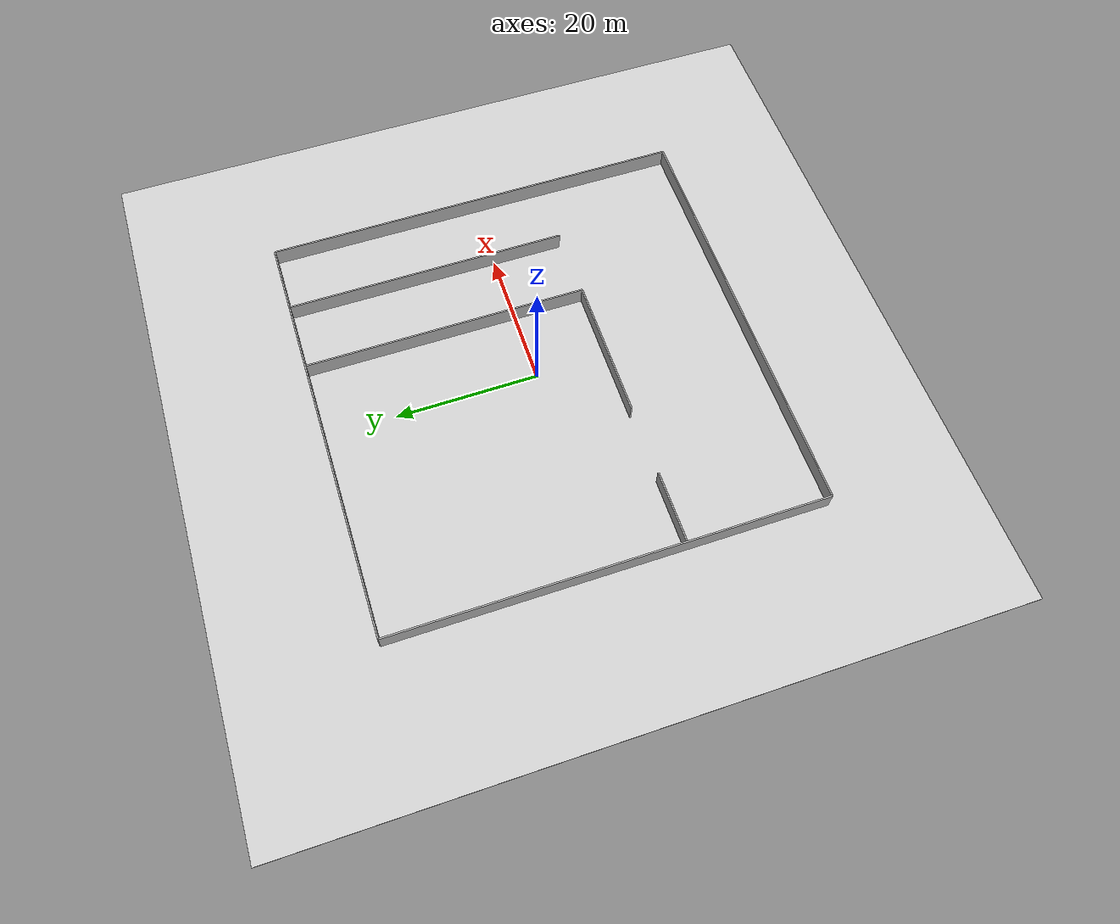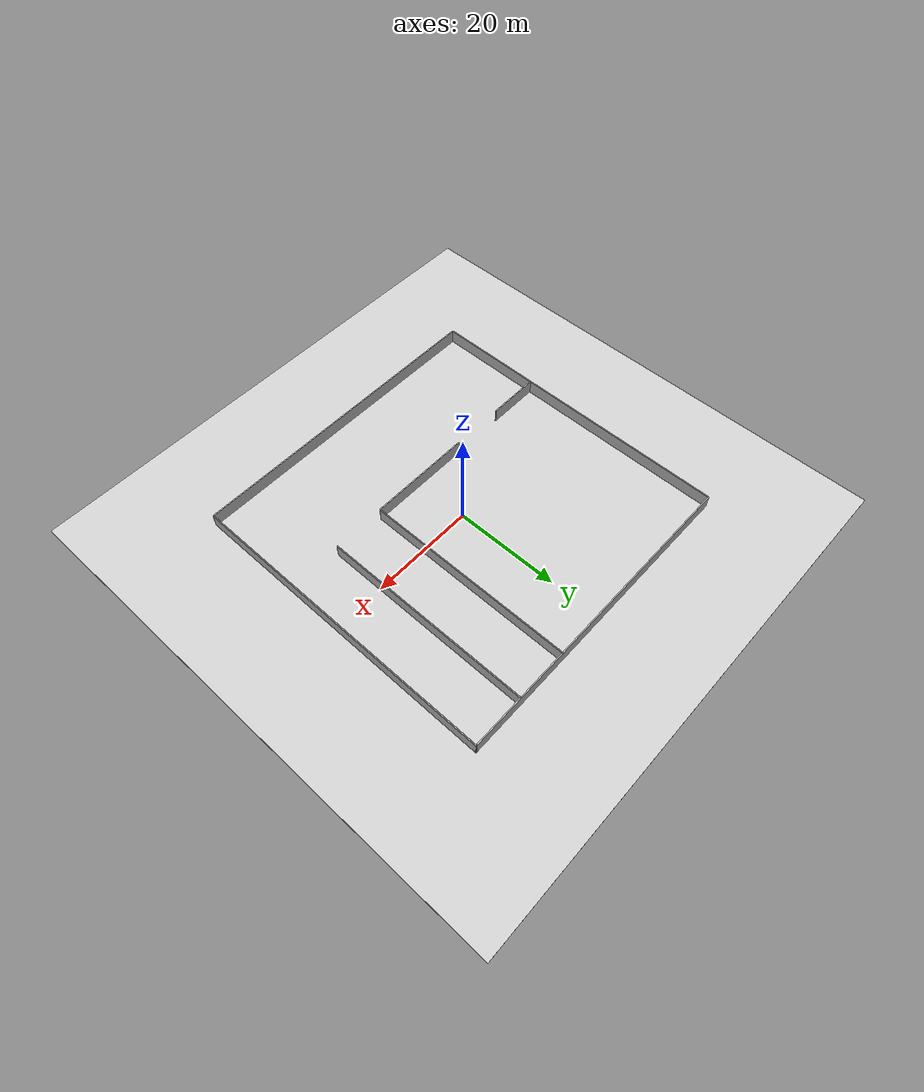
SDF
<?xml version="1.0" ?>
<!--
  You can echo lidar messages using:
    ign topic -e -t /lidar
-->
<sdf version="1.6">
  <world name="nubot_world">
  <physics name="1ms" type="ignored">
      <max_step_size>0.001</max_step_size>
      <real_time_factor>1.0</real_time_factor>
    </physics>
    <plugin
      filename="libignition-gazebo-physics-system.so"
      name="ignition::gazebo::systems::Physics">
    </plugin>
-   <plugin
      filename="libignition-gazebo-sensors-system.so"
      name="ignition::gazebo::systems::Sensors">
      <render_engine>ogre2</render_engine>
    </plugin>
    <plugin
      filename="libignition-gazebo-scene-broadcaster-system.so"
      name="ignition::gazebo::systems::SceneBroadcaster">
    </plugin>
   <plugin
    filename="ignition-gazebo-user-commands-system"
    name="ignition::gazebo::systems::UserCommands">
    </plugin>

    <light type="directional" name="sun">
      <cast_shadows>true</cast_shadows>
      <pose>0 0 10 0 0 0</pose>
      <diffuse>0.8 0.8 0.8 1</diffuse>
      <specular>0.2 0.2 0.2 1</specular>
      <attenuation>
        <range>1000</range>
        <constant>0.9</constant>
        <linear>0.01</linear>
        <quadratic>0.001</quadratic>
      </attenuation>
      <direction>-0.5 0.1 -0.9</direction>
    </light>

    <model name="ground_plane">
      <static>true</static>
      <link name="link">
        <collision name="collision">
          <geometry>
            <box>
              <size>100 100 0.1</size>
            </box>
          </geometry>
        </collision>
        <visual name="visual">
          <geometry>
            <box>
              <size>100 100 0.1</size>
            </box>
          </geometry>
          <material>
            <ambient>0.8 0.8 0.8 1</ambient>
            <diffuse>0.8 0.8 0.8 1</diffuse>
            <specular>0.8 0.8 0.8 1</specular>
          </material>
        </visual>
      </link>
    </model>

    <model name='outsideS'>
      <pose>30 0 1.4 0 0 0</pose>
      <link name='box_link'>
        <collision name='box_collision'>
          <geometry>
            <box>
            <size>0.2 60 2.8</size>
            </box>
          </geometry>
          <surface>
            <friction>
              <ode/>
            </friction>
            <bounce/>
            <contact/>
          </surface>
        </collision>
        <visual name='box_visual'>
          <geometry>
            <box>
            <size>0.2 60 2.8</size>
            </box>
          </geometry>
          <material>
            <ambient>0.3 0.3 0.3 1</ambient>
            <diffuse>0.7 0.7 0.7 1</diffuse>
            <specular>1 1 1 1</specular>
          </material>
        </visual>
        <pose>0 0 0 0 -0 0</pose>
        <enable_wind>false</enable_wind>
      </link>
      <static>true</static>
      <self_collide>false</self_collide>
    </model>

    <model name='insideS'>
      <pose>20 10 1.4 0 0 0</pose>
      <link name='box_link'>
        <collision name='box_collision'>
          <geometry>
            <box>
            <size>0.2 40 2.8</size>
            </box>
          </geometry>
          <surface>
            <friction>
              <ode/>
            </friction>
            <bounce/>
            <contact/>
          </surface>
        </collision>
        <visual name='box_visual'>
          <geometry>
            <box>
            <size>0.2 40 2.8</size>
            </box>
          </geometry>
          <material>
            <ambient>0.3 0.3 0.3 1</ambient>
            <diffuse>0.7 0.7 0.7 1</diffuse>
            <specular>1 1 1 1</specular>
          </material>
        </visual>
        <pose>0 0 0 0 -0 0</pose>
        <enable_wind>false</enable_wind>
      </link>
      <static>true</static>
      <self_collide>false</self_collide>
    </model>

    <model name='insideS1'>
      <pose>10 10 1.4 0 0 0</pose>
      <link name='box_link'>
        <collision name='box_collision'>
          <geometry>
            <box>
            <size>0.2 40 2.8</size>
            </box>
          </geometry>
          <surface>
            <friction>
              <ode/>
            </friction>
            <bounce/>
            <contact/>
          </surface>
        </collision>
        <visual name='box_visual'>
          <geometry>
            <box>
            <size>0.2 40 2.8</size>
            </box>
          </geometry>
          <material>
            <ambient>0.3 0.3 0.3 1</ambient>
            <diffuse>0.7 0.7 0.7 1</diffuse>
            <specular>1 1 1 1</specular>
          </material>
        </visual>
        <pose>0 0 0 0 -0 0</pose>
        <enable_wind>false</enable_wind>
      </link>
      <static>true</static>
      <self_collide>false</self_collide>
    </model>

    <model name='outsideN'>
      <pose>-30 0 1.4 0 0 0</pose>
      <link name='box_link'>
        <collision name='box_collision'>
          <geometry>
            <box>
            <size>0.2 60 2.8</size>
            </box>
          </geometry>
          <surface>
            <friction>
              <ode/>
            </friction>
            <bounce/>
            <contact/>
          </surface>
        </collision>
        <visual name='box_visual'>
          <geometry>
            <box>
            <size>0.2 60 2.8</size>
            </box>
          </geometry>
          <material>
            <ambient>0.3 0.3 0.3 1</ambient>
            <diffuse>0.7 0.7 0.7 1</diffuse>
            <specular>1 1 1 1</specular>
          </material>
        </visual>
        <pose>0 0 0 0 -0 0</pose>
        <enable_wind>false</enable_wind>
      </link>
      <static>true</static>
      <self_collide>false</self_collide>
    </model>

    <model name='outsideE'>
      <pose>0 -30 1.4 0 0 0</pose>
      <link name='box_link'>
        <collision name='box_collision'>
          <geometry>
            <box>
            <size>60 0.2 2.8</size>
            </box>
          </geometry>
          <surface>
            <friction>
              <ode/>
            </friction>
            <bounce/>
            <contact/>
          </surface>
        </collision>
        <visual name='box_visual'>
          <geometry>
            <box>
            <size>60 0.2 2.8</size>
            </box>
          </geometry>
          <material>
            <ambient>0.3 0.3 0.3 1</ambient>
            <diffuse>0.7 0.7 0.7 1</diffuse>
            <specular>1 1 1 1</specular>
          </material>
        </visual>
        <pose>0 0 0 0 -0 0</pose>
        <enable_wind>false</enable_wind>
      </link>
      <static>true</static>
      <self_collide>false</self_collide>
    </model>

    <model name='vwall'>
      <pose>0 -10 1.4 0 0 0</pose>
      <link name='box_link'>
        <collision name='box_collision'>
          <geometry>
            <box>
            <size>20 0.2 2.8</size>
            </box>
          </geometry>
          <surface>
            <friction>
              <ode/>
            </friction>
            <bounce/>
            <contact/>
          </surface>
        </collision>
        <visual name='box_visual'>
          <geometry>
            <box>
            <size>20 0.2 2.8</size>
            </box>
          </geometry>
          <material>
            <ambient>0.3 0.3 0.3 1</ambient>
            <diffuse>0.7 0.7 0.7 1</diffuse>
            <specular>1 1 1 1</specular>
          </material>
        </visual>
        <pose>0 0 0 0 -0 0</pose>
        <enable_wind>false</enable_wind>
      </link>
      <static>true</static>
      <self_collide>false</self_collide>
    </model>

   <model name='vwall1'>
      <pose>-25 -10 1.4 0 0 0</pose>
      <link name='box_link'>
        <collision name='box_collision'>
          <geometry>
            <box>
            <size>10 0.2 2.8</size>
            </box>
          </geometry>
          <surface>
            <friction>
              <ode/>
            </friction>
            <bounce/>
            <contact/>
          </surface>
        </collision>
        <visual name='box_visual'>
          <geometry>
            <box>
            <size>10 0.2 2.8</size>
            </box>
          </geometry>
          <material>
            <ambient>0.3 0.3 0.3 1</ambient>
            <diffuse>0.7 0.7 0.7 1</diffuse>
            <specular>1 1 1 1</specular>
          </material>
        </visual>
        <pose>0 0 0 0 -0 0</pose>
        <enable_wind>false</enable_wind>
      </link>
      <static>true</static>
      <self_collide>false</self_collide>
    </model>

    <model name='outsideW'>
      <pose>0 30 1.4 0 0 0</pose>
      <link name='box_link'>
        <collision name='box_collision'>
          <geometry>
            <box>
            <size>60 0.2 2.8</size>
            </box>
          </geometry>
          <surface>
            <friction>
              <ode/>
            </friction>
            <bounce/>
            <contact/>
          </surface>
        </collision>
        <visual name='box_visual'>
          <geometry>
            <box>
            <size>60 0.2 2.8</size>
            </box>
          </geometry>
          <material>
            <ambient>0.3 0.3 0.3 1</ambient>
            <diffuse>0.7 0.7 0.7 1</diffuse>
            <specular>1 1 1 1</specular>
          </material>
        </visual>
        <pose>0 0 0 0 -0 0</pose>
        <enable_wind>false</enable_wind>
      </link>
      <static>true</static>
      <self_collide>false</self_collide>
    </model>
  </world>
</sdf>
